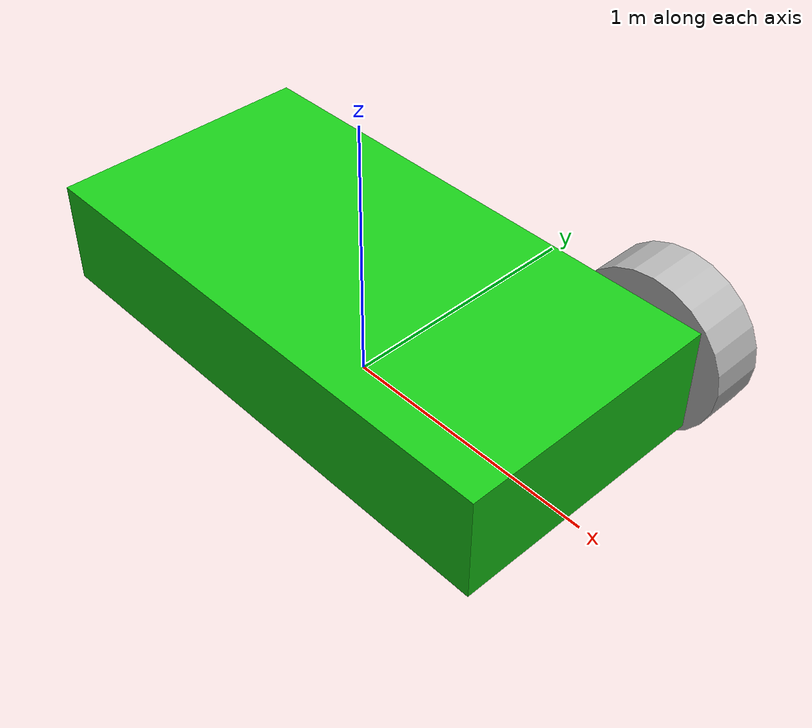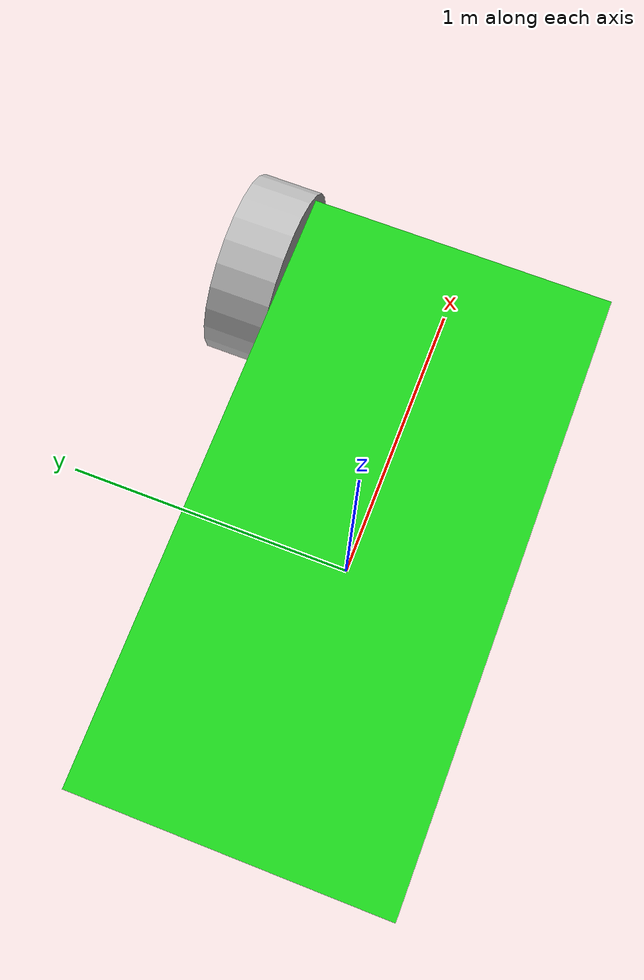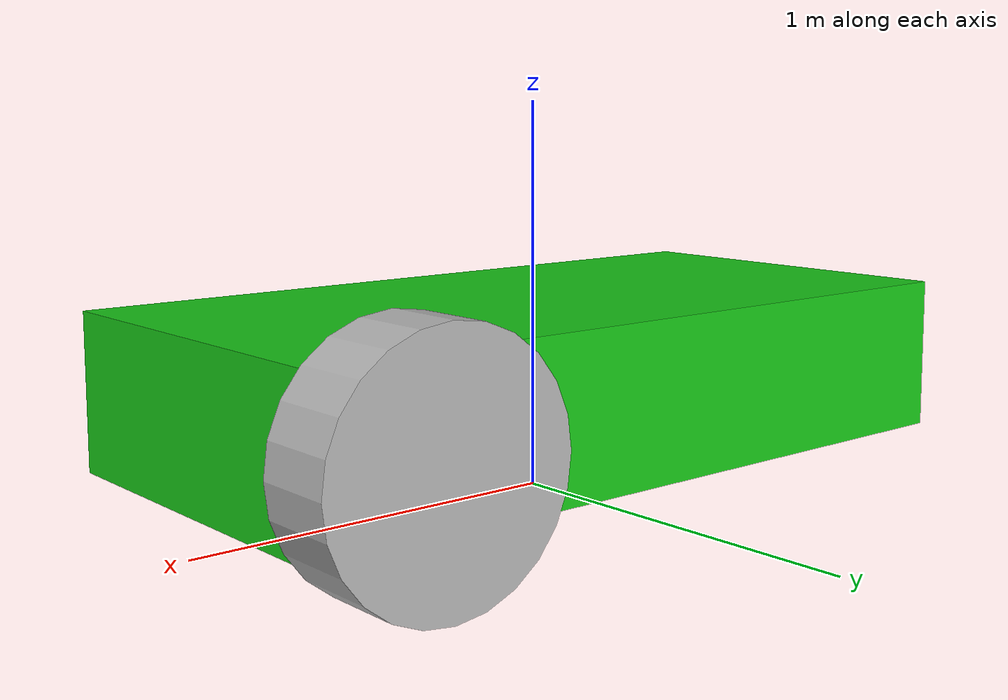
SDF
<?xml version="1.0" ?>
<sdf version="1.6">
  <model name="simple_car">
    <static>false</static>

    <!-- Chassis -->
    <link name="chassis">
      <pose>0 0 0.3 0 0 0</pose>
      <inertial>
        <mass>15.0</mass>
        <inertia>
          <ixx>0.1</ixx><ixy>0.0</ixy><ixz>0.0</ixz>
          <iyy>0.5</iyy><iyz>0.0</iyz>
          <izz>0.5</izz>
        </inertia>
      </inertial>
      <collision name="collision">
        <geometry>
          <box>
            <size>2.0 1.0 0.4</size>
          </box>
        </geometry>
      </collision>
      <visual name="visual">
        <geometry>
          <box>
            <size>2.0 1.0 0.4</size>
          </box>
        </geometry>
        <material>
          <ambient>0.1 0.8 0.1 1</ambient>
          <diffuse>0.1 0.8 0.1 1</diffuse>
        </material>
      </visual>
    </link>

    <!-- Front Left Wheel Example (Repeat poses for other 3 wheels) -->
    <link name="front_left_wheel">
      <pose>0.8 0.6 0.3 0 1.5707 1.5707</pose>
      <collision name="collision">
        <geometry>
          <cylinder>
            <radius>0.3</radius>
            <length>0.2</length>
          </cylinder>
        </geometry>
      </collision>
      <visual name="visual">
        <geometry>
          <cylinder>
            <radius>0.3</radius>
            <length>0.2</length>
          </cylinder>
        </geometry>
      </visual>
    </link>

    <!-- Joint connecting front left wheel to chassis -->
    <joint type="revolute" name="front_left_wheel_hinge">
      <pose>0 0 0 0 0 0</pose>
      <child>front_left_wheel</child>
      <parent>chassis</parent>
      <axis>
        <xyz>0 1 0</xyz>
      </axis>
    </joint>
  </model>
</sdf>
